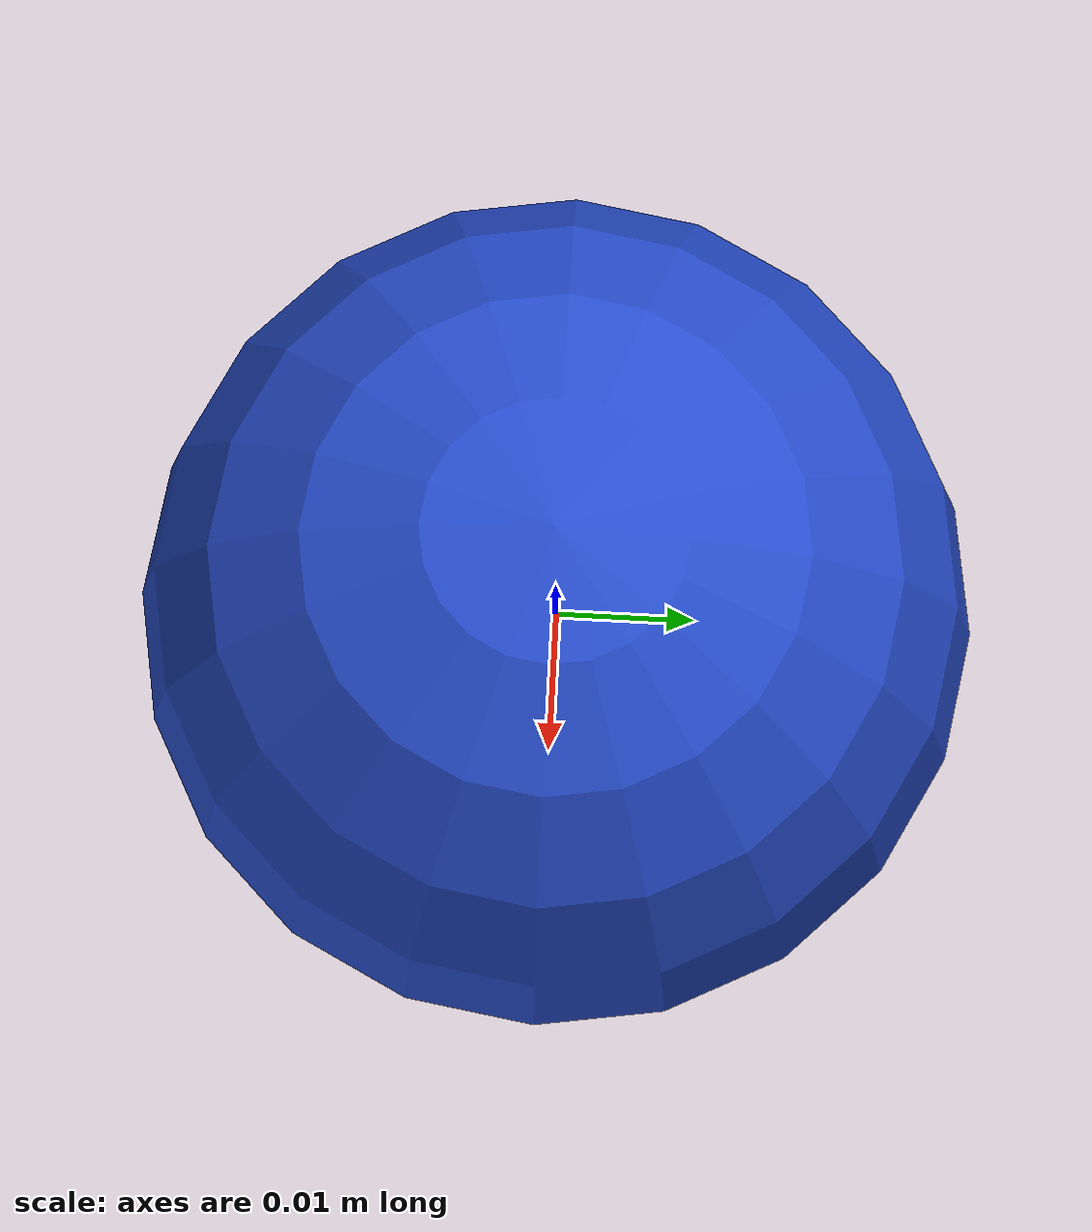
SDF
<sdf version="1.4">
 <world name="default">
  <include><uri>model://sun</uri></include>
  <include><uri>model://ground_plane</uri></include>
  <physics type="ode">
   <real_time_update_rate>1000.0</real_time_update_rate>
   <max_step_size>0.001</max_step_size>
   <real_time_factor>1</real_time_factor>
   <ode>
    <solver>
     <type>quick</type>
     <iters>150</iters>
     <precon_iters>0</precon_iters>
     <sor>1.400000</sor>
     <use_dynamic_moi_rescaling>1</use_dynamic_moi_rescaling>
    </solver>
    <constraints>
     <cfm>0.00001</cfm>
     <erp>0.2</erp>
     <contact_max_correcting_vel>2000.000000</contact_max_correcting_vel>
     <contact_surface_layer>0.01000</contact_surface_layer>
    </constraints>
   </ode>
  </physics>
  <include><uri>model://particle_sphere</uri><name>particle_sphere1</name></include>
  <include><uri>model://particle_sphere</uri><name>particle_sphere2</name></include>
  <include><uri>model://particle_sphere</uri><name>particle_sphere3</name></include>
  <include><uri>model://particle_sphere</uri><name>particle_sphere4</name></include>
  <include><uri>model://particle_sphere</uri><name>particle_sphere5</name></include>
  <include><uri>model://particle_sphere</uri><name>particle_sphere6</name></include>
  <joint name="joint_to_world" type="fixed">
   <parent>world</parent>
   <child>testing_surface_link::link</child>
  </joint>
  <scene><ambient>0.4 0.4 0.4 1</ambient><background>0.7 0.7 0.7 1</background><shadows>true</shadows></scene>
  <physics name="default_physics" default="0" type="ode">
   <max_step_size>0.001</max_step_size>
   <real_time_factor>1</real_time_factor>
   <real_time_update_rate>1000</real_time_update_rate>
  </physics>
  <plugin name="particle_shooter_plugin" filename="libparticle_shooter_plugin.so">
   <reset_frequency>10.0</reset_frequency>
   <x_axis_force>0.0</x_axis_force>
   <y_axis_force>0.0</y_axis_force>
   <z_axis_force>0.0</z_axis_force>
   <x_origin>0.0</x_origin>
   <y_origin>0.0</y_origin>
   <z_origin>0.0</z_origin>
   <random_range>0.5</random_range>
  </plugin>
 </world>
</sdf>

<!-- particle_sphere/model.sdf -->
<sdf version='1.4'>
  <model name="particle_sphere">
      <static>0</static>
      <link name='link'>
        <inertial>
          <mass>0.25</mass>
          <inertia>
            <ixx>9e-05</ixx>
            <ixy>0.000000</ixy>
            <ixz>0.000000</ixz>
            <iyy>9e-05</iyy>
            <iyz>0.000000</iyz>
            <izz>9e-05</izz>
          </inertia>
        </inertial>
        <collision name='collision'>
          <geometry>
            <sphere>
              <radius>0.03</radius>
            </sphere>
          </geometry>
          <surface>
            <friction>
              <ode>
                <mu>30.0</mu>
                <mu2>30.0</mu2>
              </ode>
            </friction>
            <contact>
              <ode>
                <kp>1000000.0</kp>
                <kd>100.0</kd>
                <max_vel>1.0</max_vel>
                <min_depth>0.002</min_depth>
              </ode>
            </contact>
          </surface>
        </collision>
        <visual name='visual'>
          <geometry>
            <sphere>
              <radius>0.03</radius>
            </sphere>
          </geometry>
          <material>
            <script>
              <uri>file://media/materials/scripts/gazebo.material</uri>
              <name>Gazebo/Blue</name>
            </script>
          </material>
        </visual>
        <velocity_decay>
          <linear>0.000000</linear>
          <angular>0.000000</angular>
        </velocity_decay>
        <self_collide>0</self_collide>
        <kinematic>0</kinematic>
        <gravity>0</gravity>
      </link>
  </model>
</sdf>
